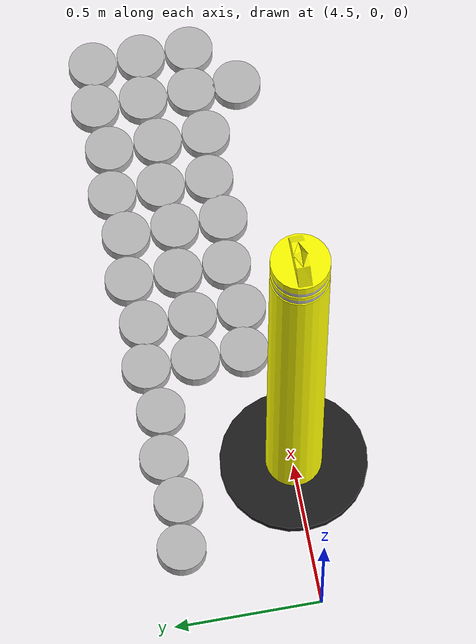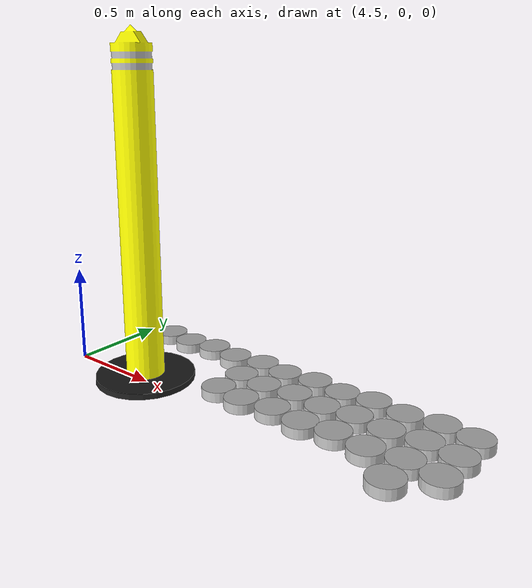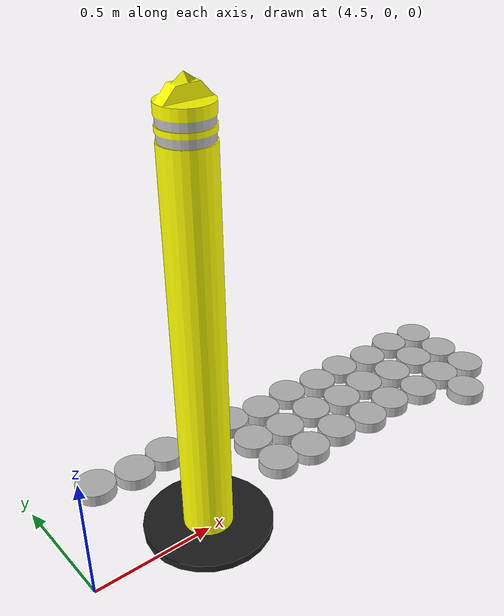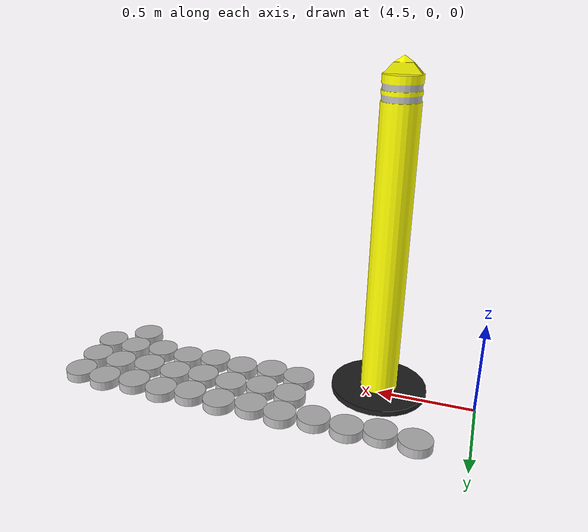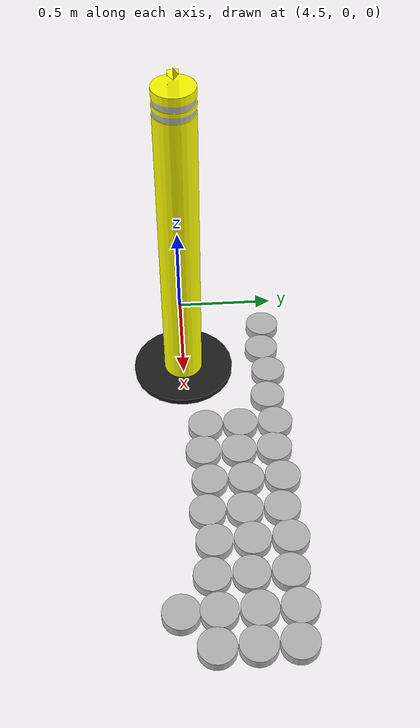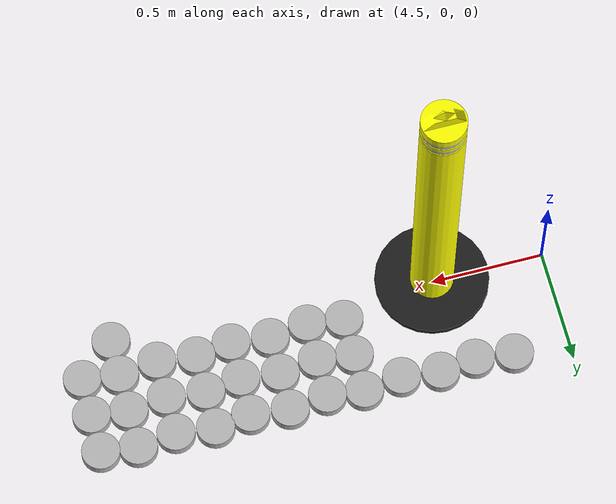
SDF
<sdf version="1.6">
 <world name="default">
  <model name="pylon_yellow"><include><uri>model://pylon_yellow</uri></include><pose>5 0 0 0 0 0</pose></model>
  <model name="SnowPuck-19-5-0">
   <pose>4.75 0.43 0.05  0 0 0</pose>
   <link name="link">
    <inertial>
     <mass>0.01</mass>
     <inertia><ixx>0.145833</ixx><ixy>0</ixy><ixz>0</ixz><iyy>0.145833</iyy><iyz>0</iyz><izz>0.125</izz></inertia>
    </inertial>
    <collision name="collision">
     <geometry><cylinder><radius>.05</radius><length>0.04</length></cylinder></geometry>
    </collision>
    <visual name="visual">
     <geometry><cylinder><radius>.083333</radius><length>0.05</length></cylinder></geometry>
    </visual>
   </link>
  </model>
  <model name="SnowPuck-20-5-0">
   <pose>4.92 0.41 0.05  0 0 0</pose>
   <link name="link">
    <inertial>
     <mass>0.01</mass>
     <inertia><ixx>0.145833</ixx><ixy>0</ixy><ixz>0</ixz><iyy>0.145833</iyy><iyz>0</iyz><izz>0.125</izz></inertia>
    </inertial>
    <collision name="collision">
     <geometry><cylinder><radius>.05</radius><length>0.04</length></cylinder></geometry>
    </collision>
    <visual name="visual">
     <geometry><cylinder><radius>.083333</radius><length>0.05</length></cylinder></geometry>
    </visual>
   </link>
  </model>
  <model name="SnowPuck-21-5-0">
   <pose>5.08 0.43 0.05  0 0 0</pose>
   <link name="link">
    <inertial>
     <mass>0.01</mass>
     <inertia><ixx>0.145833</ixx><ixy>0</ixy><ixz>0</ixz><iyy>0.145833</iyy><iyz>0</iyz><izz>0.125</izz></inertia>
    </inertial>
    <collision name="collision">
     <geometry><cylinder><radius>.05</radius><length>0.04</length></cylinder></geometry>
    </collision>
    <visual name="visual">
     <geometry><cylinder><radius>.083333</radius><length>0.05</length></cylinder></geometry>
    </visual>
   </link>
  </model>
  <model name="SnowPuck-22-5-0">
   <pose>5.25 0.41 0.05  0 0 0</pose>
   <link name="link">
    <inertial>
     <mass>0.01</mass>
     <inertia><ixx>0.145833</ixx><ixy>0</ixy><ixz>0</ixz><iyy>0.145833</iyy><iyz>0</iyz><izz>0.125</izz></inertia>
    </inertial>
    <collision name="collision">
     <geometry><cylinder><radius>.05</radius><length>0.04</length></cylinder></geometry>
    </collision>
    <visual name="visual">
     <geometry><cylinder><radius>.083333</radius><length>0.05</length></cylinder></geometry>
    </visual>
   </link>
  </model>
  <model name="SnowPuck-23-3-0">
   <pose>5.42 0.09 0.05  0 0 0</pose>
   <link name="link">
    <inertial>
     <mass>0.01</mass>
     <inertia><ixx>0.145833</ixx><ixy>0</ixy><ixz>0</ixz><iyy>0.145833</iyy><iyz>0</iyz><izz>0.125</izz></inertia>
    </inertial>
    <collision name="collision">
     <geometry><cylinder><radius>.05</radius><length>0.04</length></cylinder></geometry>
    </collision>
    <visual name="visual">
     <geometry><cylinder><radius>.083333</radius><length>0.05</length></cylinder></geometry>
    </visual>
   </link>
  </model>
  <model name="SnowPuck-23-4-0">
   <pose>5.42 0.26 0.05  0 0 0</pose>
   <link name="link">
    <inertial>
     <mass>0.01</mass>
     <inertia><ixx>0.145833</ixx><ixy>0</ixy><ixz>0</ixz><iyy>0.145833</iyy><iyz>0</iyz><izz>0.125</izz></inertia>
    </inertial>
    <collision name="collision">
     <geometry><cylinder><radius>.05</radius><length>0.04</length></cylinder></geometry>
    </collision>
    <visual name="visual">
     <geometry><cylinder><radius>.083333</radius><length>0.05</length></cylinder></geometry>
    </visual>
   </link>
  </model>
  <model name="SnowPuck-23-5-0">
   <pose>5.42 0.43 0.05  0 0 0</pose>
   <link name="link">
    <inertial>
     <mass>0.01</mass>
     <inertia><ixx>0.145833</ixx><ixy>0</ixy><ixz>0</ixz><iyy>0.145833</iyy><iyz>0</iyz><izz>0.125</izz></inertia>
    </inertial>
    <collision name="collision">
     <geometry><cylinder><radius>.05</radius><length>0.04</length></cylinder></geometry>
    </collision>
    <visual name="visual">
     <geometry><cylinder><radius>.083333</radius><length>0.05</length></cylinder></geometry>
    </visual>
   </link>
  </model>
  <model name="SnowPuck-24-3-0">
   <pose>5.58 0.07 0.05  0 0 0</pose>
   <link name="link">
    <inertial>
     <mass>0.01</mass>
     <inertia><ixx>0.145833</ixx><ixy>0</ixy><ixz>0</ixz><iyy>0.145833</iyy><iyz>0</iyz><izz>0.125</izz></inertia>
    </inertial>
    <collision name="collision">
     <geometry><cylinder><radius>.05</radius><length>0.04</length></cylinder></geometry>
    </collision>
    <visual name="visual">
     <geometry><cylinder><radius>.083333</radius><length>0.05</length></cylinder></geometry>
    </visual>
   </link>
  </model>
  <model name="SnowPuck-24-4-0">
   <pose>5.58 0.24 0.05  0 0 0</pose>
   <link name="link">
    <inertial>
     <mass>0.01</mass>
     <inertia><ixx>0.145833</ixx><ixy>0</ixy><ixz>0</ixz><iyy>0.145833</iyy><iyz>0</iyz><izz>0.125</izz></inertia>
    </inertial>
    <collision name="collision">
     <geometry><cylinder><radius>.05</radius><length>0.04</length></cylinder></geometry>
    </collision>
    <visual name="visual">
     <geometry><cylinder><radius>.083333</radius><length>0.05</length></cylinder></geometry>
    </visual>
   </link>
  </model>
  <model name="SnowPuck-24-5-0">
   <pose>5.58 0.41 0.05  0 0 0</pose>
   <link name="link">
    <inertial>
     <mass>0.01</mass>
     <inertia><ixx>0.145833</ixx><ixy>0</ixy><ixz>0</ixz><iyy>0.145833</iyy><iyz>0</iyz><izz>0.125</izz></inertia>
    </inertial>
    <collision name="collision">
     <geometry><cylinder><radius>.05</radius><length>0.04</length></cylinder></geometry>
    </collision>
    <visual name="visual">
     <geometry><cylinder><radius>.083333</radius><length>0.05</length></cylinder></geometry>
    </visual>
   </link>
  </model>
  <model name="SnowPuck-25-3-0">
   <pose>5.75 0.09 0.05  0 0 0</pose>
   <link name="link">
    <inertial>
     <mass>0.01</mass>
     <inertia><ixx>0.145833</ixx><ixy>0</ixy><ixz>0</ixz><iyy>0.145833</iyy><iyz>0</iyz><izz>0.125</izz></inertia>
    </inertial>
    <collision name="collision">
     <geometry><cylinder><radius>.05</radius><length>0.04</length></cylinder></geometry>
    </collision>
    <visual name="visual">
     <geometry><cylinder><radius>.083333</radius><length>0.05</length></cylinder></geometry>
    </visual>
   </link>
  </model>
  <model name="SnowPuck-25-4-0">
   <pose>5.75 0.26 0.05  0 0 0</pose>
   <link name="link">
    <inertial>
     <mass>0.01</mass>
     <inertia><ixx>0.145833</ixx><ixy>0</ixy><ixz>0</ixz><iyy>0.145833</iyy><iyz>0</iyz><izz>0.125</izz></inertia>
    </inertial>
    <collision name="collision">
     <geometry><cylinder><radius>.05</radius><length>0.04</length></cylinder></geometry>
    </collision>
    <visual name="visual">
     <geometry><cylinder><radius>.083333</radius><length>0.05</length></cylinder></geometry>
    </visual>
   </link>
  </model>
  <model name="SnowPuck-25-5-0">
   <pose>5.75 0.43 0.05  0 0 0</pose>
   <link name="link">
    <inertial>
     <mass>0.01</mass>
     <inertia><ixx>0.145833</ixx><ixy>0</ixy><ixz>0</ixz><iyy>0.145833</iyy><iyz>0</iyz><izz>0.125</izz></inertia>
    </inertial>
    <collision name="collision">
     <geometry><cylinder><radius>.05</radius><length>0.04</length></cylinder></geometry>
    </collision>
    <visual name="visual">
     <geometry><cylinder><radius>.083333</radius><length>0.05</length></cylinder></geometry>
    </visual>
   </link>
  </model>
  <model name="SnowPuck-26-3-0">
   <pose>5.92 0.07 0.05  0 0 0</pose>
   <link name="link">
    <inertial>
     <mass>0.01</mass>
     <inertia><ixx>0.145833</ixx><ixy>0</ixy><ixz>0</ixz><iyy>0.145833</iyy><iyz>0</iyz><izz>0.125</izz></inertia>
    </inertial>
    <collision name="collision">
     <geometry><cylinder><radius>.05</radius><length>0.04</length></cylinder></geometry>
    </collision>
    <visual name="visual">
     <geometry><cylinder><radius>.083333</radius><length>0.05</length></cylinder></geometry>
    </visual>
   </link>
  </model>
  <model name="SnowPuck-26-4-0">
   <pose>5.92 0.24 0.05  0 0 0</pose>
   <link name="link">
    <inertial>
     <mass>0.01</mass>
     <inertia><ixx>0.145833</ixx><ixy>0</ixy><ixz>0</ixz><iyy>0.145833</iyy><iyz>0</iyz><izz>0.125</izz></inertia>
    </inertial>
    <collision name="collision">
     <geometry><cylinder><radius>.05</radius><length>0.04</length></cylinder></geometry>
    </collision>
    <visual name="visual">
     <geometry><cylinder><radius>.083333</radius><length>0.05</length></cylinder></geometry>
    </visual>
   </link>
  </model>
  <model name="SnowPuck-26-5-0">
   <pose>5.92 0.41 0.05  0 0 0</pose>
   <link name="link">
    <inertial>
     <mass>0.01</mass>
     <inertia><ixx>0.145833</ixx><ixy>0</ixy><ixz>0</ixz><iyy>0.145833</iyy><iyz>0</iyz><izz>0.125</izz></inertia>
    </inertial>
    <collision name="collision">
     <geometry><cylinder><radius>.05</radius><length>0.04</length></cylinder></geometry>
    </collision>
    <visual name="visual">
     <geometry><cylinder><radius>.083333</radius><length>0.05</length></cylinder></geometry>
    </visual>
   </link>
  </model>
  <model name="SnowPuck-27-3-0">
   <pose>6.08 0.09 0.05  0 0 0</pose>
   <link name="link">
    <inertial>
     <mass>0.01</mass>
     <inertia><ixx>0.145833</ixx><ixy>0</ixy><ixz>0</ixz><iyy>0.145833</iyy><iyz>0</iyz><izz>0.125</izz></inertia>
    </inertial>
    <collision name="collision">
     <geometry><cylinder><radius>.05</radius><length>0.04</length></cylinder></geometry>
    </collision>
    <visual name="visual">
     <geometry><cylinder><radius>.083333</radius><length>0.05</length></cylinder></geometry>
    </visual>
   </link>
  </model>
  <model name="SnowPuck-27-4-0">
   <pose>6.08 0.26 0.05  0 0 0</pose>
   <link name="link">
    <inertial>
     <mass>0.01</mass>
     <inertia><ixx>0.145833</ixx><ixy>0</ixy><ixz>0</ixz><iyy>0.145833</iyy><iyz>0</iyz><izz>0.125</izz></inertia>
    </inertial>
    <collision name="collision">
     <geometry><cylinder><radius>.05</radius><length>0.04</length></cylinder></geometry>
    </collision>
    <visual name="visual">
     <geometry><cylinder><radius>.083333</radius><length>0.05</length></cylinder></geometry>
    </visual>
   </link>
  </model>
  <model name="SnowPuck-27-5-0">
   <pose>6.08 0.43 0.05  0 0 0</pose>
   <link name="link">
    <inertial>
     <mass>0.01</mass>
     <inertia><ixx>0.145833</ixx><ixy>0</ixy><ixz>0</ixz><iyy>0.145833</iyy><iyz>0</iyz><izz>0.125</izz></inertia>
    </inertial>
    <collision name="collision">
     <geometry><cylinder><radius>.05</radius><length>0.04</length></cylinder></geometry>
    </collision>
    <visual name="visual">
     <geometry><cylinder><radius>.083333</radius><length>0.05</length></cylinder></geometry>
    </visual>
   </link>
  </model>
  <model name="SnowPuck-28-3-0">
   <pose>6.25 0.07 0.05  0 0 0</pose>
   <link name="link">
    <inertial>
     <mass>0.01</mass>
     <inertia><ixx>0.145833</ixx><ixy>0</ixy><ixz>0</ixz><iyy>0.145833</iyy><iyz>0</iyz><izz>0.125</izz></inertia>
    </inertial>
    <collision name="collision">
     <geometry><cylinder><radius>.05</radius><length>0.04</length></cylinder></geometry>
    </collision>
    <visual name="visual">
     <geometry><cylinder><radius>.083333</radius><length>0.05</length></cylinder></geometry>
    </visual>
   </link>
  </model>
  <model name="SnowPuck-28-4-0">
   <pose>6.25 0.24 0.05  0 0 0</pose>
   <link name="link">
    <inertial>
     <mass>0.01</mass>
     <inertia><ixx>0.145833</ixx><ixy>0</ixy><ixz>0</ixz><iyy>0.145833</iyy><iyz>0</iyz><izz>0.125</izz></inertia>
    </inertial>
    <collision name="collision">
     <geometry><cylinder><radius>.05</radius><length>0.04</length></cylinder></geometry>
    </collision>
    <visual name="visual">
     <geometry><cylinder><radius>.083333</radius><length>0.05</length></cylinder></geometry>
    </visual>
   </link>
  </model>
  <model name="SnowPuck-28-5-0">
   <pose>6.25 0.41 0.05  0 0 0</pose>
   <link name="link">
    <inertial>
     <mass>0.01</mass>
     <inertia><ixx>0.145833</ixx><ixy>0</ixy><ixz>0</ixz><iyy>0.145833</iyy><iyz>0</iyz><izz>0.125</izz></inertia>
    </inertial>
    <collision name="collision">
     <geometry><cylinder><radius>.05</radius><length>0.04</length></cylinder></geometry>
    </collision>
    <visual name="visual">
     <geometry><cylinder><radius>.083333</radius><length>0.05</length></cylinder></geometry>
    </visual>
   </link>
  </model>
  <model name="SnowPuck-29-2-0">
   <pose>6.42 -0.07 0.05  0 0 0</pose>
   <link name="link">
    <inertial>
     <mass>0.01</mass>
     <inertia><ixx>0.145833</ixx><ixy>0</ixy><ixz>0</ixz><iyy>0.145833</iyy><iyz>0</iyz><izz>0.125</izz></inertia>
    </inertial>
    <collision name="collision">
     <geometry><cylinder><radius>.05</radius><length>0.04</length></cylinder></geometry>
    </collision>
    <visual name="visual">
     <geometry><cylinder><radius>.083333</radius><length>0.05</length></cylinder></geometry>
    </visual>
   </link>
  </model>
  <model name="SnowPuck-29-3-0">
   <pose>6.42 0.09 0.05  0 0 0</pose>
   <link name="link">
    <inertial>
     <mass>0.01</mass>
     <inertia><ixx>0.145833</ixx><ixy>0</ixy><ixz>0</ixz><iyy>0.145833</iyy><iyz>0</iyz><izz>0.125</izz></inertia>
    </inertial>
    <collision name="collision">
     <geometry><cylinder><radius>.05</radius><length>0.04</length></cylinder></geometry>
    </collision>
    <visual name="visual">
     <geometry><cylinder><radius>.083333</radius><length>0.05</length></cylinder></geometry>
    </visual>
   </link>
  </model>
  <model name="SnowPuck-29-4-0">
   <pose>6.42 0.26 0.05  0 0 0</pose>
   <link name="link">
    <inertial>
     <mass>0.01</mass>
     <inertia><ixx>0.145833</ixx><ixy>0</ixy><ixz>0</ixz><iyy>0.145833</iyy><iyz>0</iyz><izz>0.125</izz></inertia>
    </inertial>
    <collision name="collision">
     <geometry><cylinder><radius>.05</radius><length>0.04</length></cylinder></geometry>
    </collision>
    <visual name="visual">
     <geometry><cylinder><radius>.083333</radius><length>0.05</length></cylinder></geometry>
    </visual>
   </link>
  </model>
  <model name="SnowPuck-29-5-0">
   <pose>6.42 0.43 0.05  0 0 0</pose>
   <link name="link">
    <inertial>
     <mass>0.01</mass>
     <inertia><ixx>0.145833</ixx><ixy>0</ixy><ixz>0</ixz><iyy>0.145833</iyy><iyz>0</iyz><izz>0.125</izz></inertia>
    </inertial>
    <collision name="collision">
     <geometry><cylinder><radius>.05</radius><length>0.04</length></cylinder></geometry>
    </collision>
    <visual name="visual">
     <geometry><cylinder><radius>.083333</radius><length>0.05</length></cylinder></geometry>
    </visual>
   </link>
  </model>
  <model name="SnowPuck-30-3-0">
   <pose>6.58 0.07 0.05  0 0 0</pose>
   <link name="link">
    <inertial>
     <mass>0.01</mass>
     <inertia><ixx>0.145833</ixx><ixy>0</ixy><ixz>0</ixz><iyy>0.145833</iyy><iyz>0</iyz><izz>0.125</izz></inertia>
    </inertial>
    <collision name="collision">
     <geometry><cylinder><radius>.05</radius><length>0.04</length></cylinder></geometry>
    </collision>
    <visual name="visual">
     <geometry><cylinder><radius>.083333</radius><length>0.05</length></cylinder></geometry>
    </visual>
   </link>
  </model>
  <model name="SnowPuck-30-4-0">
   <pose>6.58 0.24 0.05  0 0 0</pose>
   <link name="link">
    <inertial>
     <mass>0.01</mass>
     <inertia><ixx>0.145833</ixx><ixy>0</ixy><ixz>0</ixz><iyy>0.145833</iyy><iyz>0</iyz><izz>0.125</izz></inertia>
    </inertial>
    <collision name="collision">
     <geometry><cylinder><radius>.05</radius><length>0.04</length></cylinder></geometry>
    </collision>
    <visual name="visual">
     <geometry><cylinder><radius>.083333</radius><length>0.05</length></cylinder></geometry>
    </visual>
   </link>
  </model>
  <model name="SnowPuck-30-5-0">
   <pose>6.58 0.41 0.05  0 0 0</pose>
   <link name="link">
    <inertial>
     <mass>0.01</mass>
     <inertia><ixx>0.145833</ixx><ixy>0</ixy><ixz>0</ixz><iyy>0.145833</iyy><iyz>0</iyz><izz>0.125</izz></inertia>
    </inertial>
    <collision name="collision">
     <geometry><cylinder><radius>.05</radius><length>0.04</length></cylinder></geometry>
    </collision>
    <visual name="visual">
     <geometry><cylinder><radius>.083333</radius><length>0.05</length></cylinder></geometry>
    </visual>
   </link>
  </model>
 </world>
</sdf>
